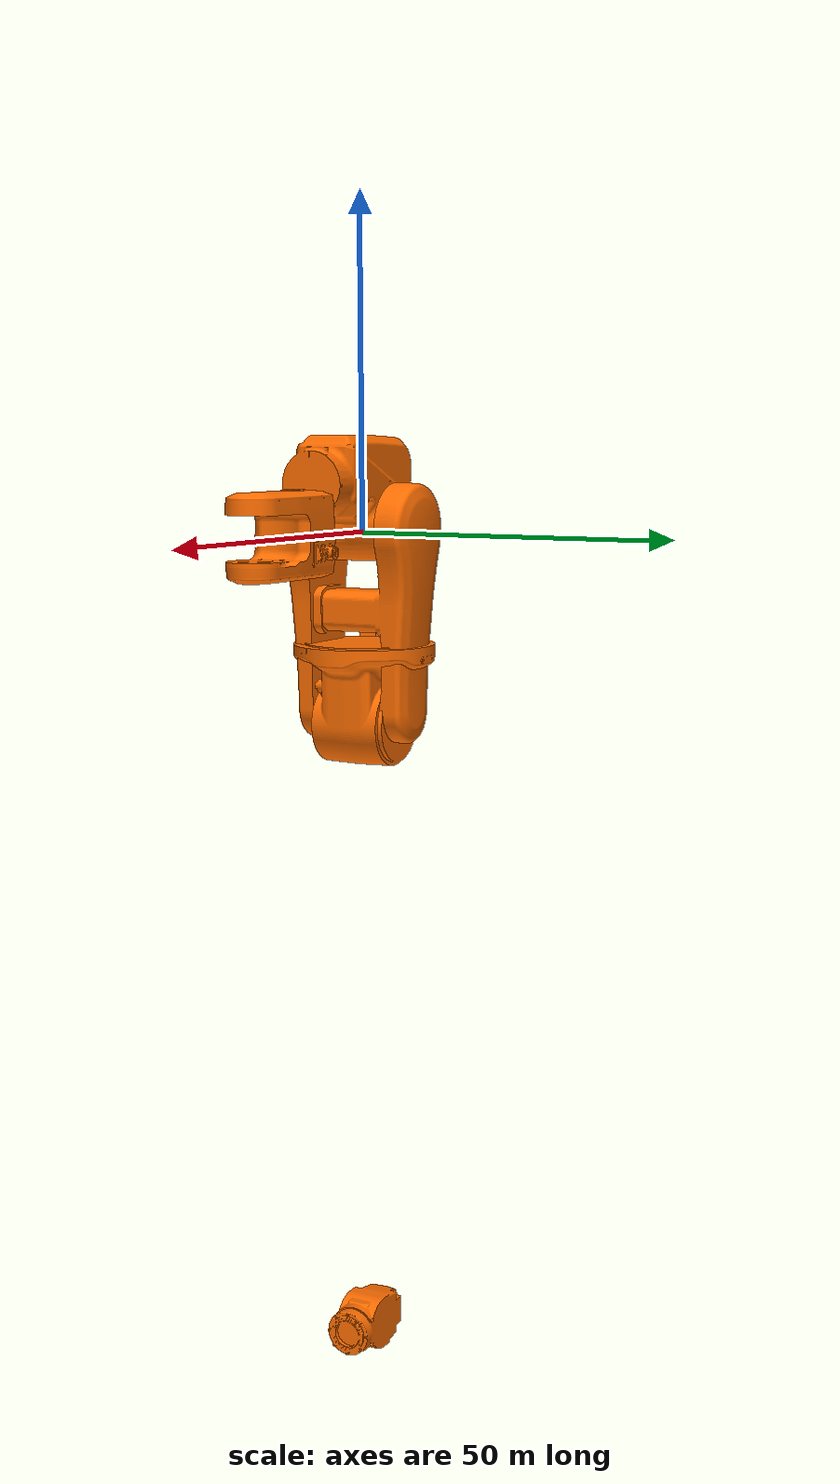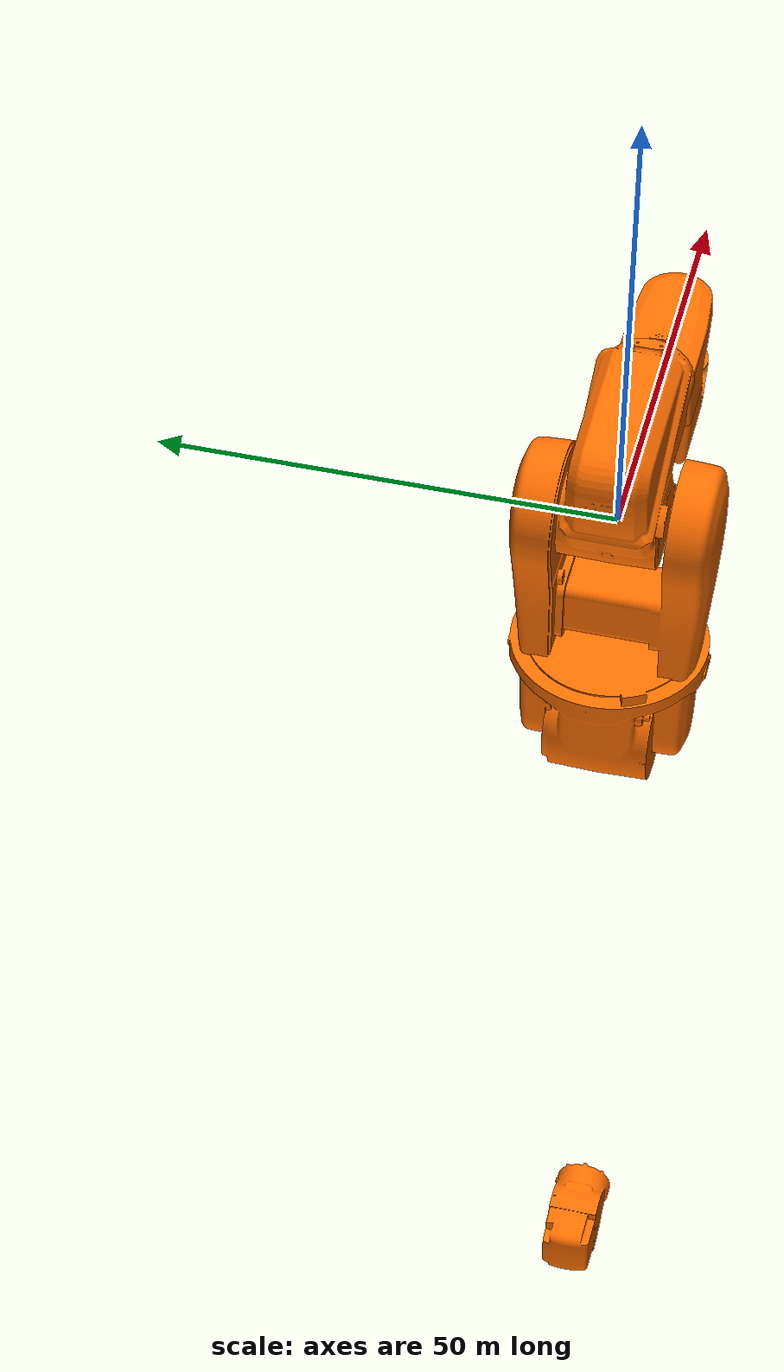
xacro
<?xml version="1.0" ?>

<robot name="irb_120_s" xmlns:xacro="http://ros.org/wiki/xacro">
	<xacro:include filename="$(find abb_common)/urdf/irb_120_macro.xacro"/>
	<xacro:irb_120 prefix=""/>
<link name="link_wp">
  <visual>
    <geometry>
      <box size="2 2 0.01"/>
    </geometry>
    <material name="black">
      <color rgba="0.1 0.1 0.1 1"/>
    </material>
    <origin xyz="0 0 0"/>
  </visual>
	<collision>
		<geometry>
			<box size="2 2 0.01"/>
		</geometry>
    <origin xyz="0 0 0"/>
	</collision>
</link>

<joint name="joint_wp2b" type="fixed">
  <parent link="link_wp"/>
  <child link="base_link"/>
  <origin xyz="0 0 0"/>
</joint>

<link name="link_scanner">
  <visual>
    <geometry>
      <box size="0.1 0.4 0.1"/>
    </geometry>
    <material name="silver">
      <color rgba="0.7 0.7 0.7 1"/>
    </material>
    <origin xyz="0 0 0"/>
  </visual>
	<collision>
		<geometry>
			<box size="0.1 0.4 0.1"/>
		</geometry>
    <origin xyz="0 0 0"/>
	</collision>
</link>

<link name="link_laserplate">
  <visual>
    <geometry>
      <box size="0.5 0.001 0.6"/>
    </geometry>
    <material name="red">
      <color rgba="0.8 0.1 0.1 0.3"/>
    </material>
    <origin xyz="0.6 0 0"/>
  </visual>
 	<collision>
		<geometry>
      <box size="0.0001 0.0001 0.0001"/>
		</geometry>
    <origin xyz="0 0 0"/>
	</collision>
</link>

<joint name="joint_s2t" type="fixed">
  <parent link="tool0"/>
  <child link="link_scanner"/>
  <origin xyz="0.05 0 0"/>
</joint>

<joint name="joint_l2s" type="fixed">
  <parent link="link_scanner"/>
  <child link="link_laserplate"/>
  <origin xyz="0 0 0"/>
</joint>
</robot>

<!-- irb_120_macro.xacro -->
<robot xmlns:xacro="http://ros.org/wiki/xacro">
	<xacro:macro name="irb_120" params="prefix">
		<!-- link list -->
		<link name="${prefix}base_link">
			<visual>
     			<origin
        		xyz="0 0 0"
       			rpy="0 0 0" />
      			<geometry>
        			<mesh
          			filename="package://abb_common/meshes/irb_120/visual/base_link.stl" />
      			</geometry>
      			<material
        			name="abb_orange">
        			<color
          			rgba="1 0.43 0 1" />
      			</material>
    		</visual>
 			<collision>
				<geometry>
					<mesh filename="package://abb_common/meshes/irb_120/collision/base_link.stl" />
				</geometry>
				<material name="yellow">
					<color rgba="0 1 1 1"/>
				</material>
			</collision>

		</link>
		<link name="${prefix}link_1">
			<visual>
      			<origin
        			xyz="0 0 0"
        			rpy="0 0 0" />
      			<geometry>
        			<mesh
          			filename="package://abb_common/meshes/irb_120/visual/link_1.stl" />
      			</geometry>
      			<material name="abb_orange"/>
    		</visual>
			<collision>
      			<origin
        			xyz="0 0 0"
        			rpy="0 0 0" />
				<geometry>
					<mesh filename="package://abb_common/meshes/irb_120/collision/link_1.stl" />
				</geometry>
				<material name="yellow"/>
			</collision>

		</link>
		<link name="${prefix}link_2">
		    <visual>
      			<origin
        			xyz="0 0 0"
        			rpy="0 0 0" />
      			<geometry>
        			<mesh
          			filename="package://abb_common/meshes/irb_120/visual/link_2.stl" />
      			</geometry>
      			<material name="abb_orange"/>
    		</visual>
			<collision>
      			<origin
        			xyz="0 0 0"
        			rpy="0 0 0" />
				<geometry>
					<mesh filename="package://abb_common/meshes/irb_120/collision/link_2.stl" />
				</geometry>
				<material name="yellow"/>
			</collision>

		</link>
		<link name="${prefix}link_3">
			<visual>
				<origin
					xyz="0 0 0"
					rpy="0 0 0" />
			  	<geometry>
					<mesh
				  	filename="package://abb_common/meshes/irb_120/visual/link_3.stl" />
			  	</geometry>
			  	<material name="abb_orange"/>
			</visual>
			<collision>
      			<origin
        			xyz="0 0 0"
        			rpy="0 0 0" />
				<geometry>
					<mesh filename="package://abb_common/meshes/irb_120/collision/link_3.stl" />
				</geometry>
				<material name="yellow"/>
			</collision>

		</link>
		<link name="${prefix}link_4">
			<visual>
				  <origin
					xyz="0 0 0"
					rpy="0 0 0" />
				  <geometry>
					<mesh
					  filename="package://abb_common/meshes/irb_120/visual/link_4.stl" />
				  </geometry>
				  <material name="abb_orange"/>
			</visual>
			<collision>
      			<origin
        			xyz="0 0 0"
        			rpy="0 0 0" />
				<geometry>
					<mesh filename="package://abb_common/meshes/irb_120/collision/link_4.stl" />
				</geometry>
				<material name="yellow"/>
			</collision>

		</link>
		<link name="${prefix}link_5">
			<visual>
				<origin
					xyz="0 0 0"
					rpy="0 0 0" />
				<geometry>
					<mesh
					  filename="package://abb_common/meshes/irb_120/visual/link_5.stl" />
				</geometry>
				<material name="abb_orange"/>
			</visual>
			<collision>
      			<origin
        			xyz="0 0 0"
        			rpy="0 0 0" />
				<geometry>
					<mesh filename="package://abb_common/meshes/irb_120/collision/link_5.stl" />
				</geometry>
				<material name="yellow"/>
			</collision>

		</link>
		<link name="${prefix}link_6">
			<visual>
				<origin
					xyz="0 0 0"
					rpy="0 0 0" />
				<geometry>
					<mesh
					  filename="package://abb_common/meshes/irb_120/visual/link_6.stl" />
				</geometry>
				<material name="abb_orange"/>
			</visual>
			<collision>
      			<origin
        			xyz="0 0 0"
        			rpy="0 0 0" />
				<geometry>
					<mesh filename="package://abb_common/meshes/irb_120/collision/link_6.stl" />
				</geometry>
				<material name="yellow"/>
			</collision>

		</link>
		<link name="${prefix}tool0"/>
		<!-- end of link list -->

		<!-- joint list -->
		<joint name="${prefix}joint_1" type="revolute">
			<origin
			  xyz="0 0 0"
			  rpy="0 0 0" />
			<parent
			  link="base_link" />
			<child
			  link="link_1" />
			<axis
			  xyz="0 0 1" />
			<limit
			  lower="-3.1416"
			  upper="3.1416"
			  effort="0"
			  velocity="2.618" />
			<calibration
			  rising="0"
			  falling="0" />
			<dynamics
			  damping="0"
			  friction="0" />
		</joint>
		<joint name="${prefix}joint_2" type="revolute">
			<origin
			  xyz="0 0 0.29"
			  rpy="0 0 0" />
			<parent
			  link="link_1" />
			<child
			  link="link_2" />
			<axis
			  xyz="0 1 0" />
			<limit
			  lower="-1.7453"
			  upper="1.9199"
			  effort="0"
			  velocity="2.618" />
			<calibration
			  rising="0"
			  falling="0" />
			<dynamics
			  damping="0"
			  friction="0" />
  		</joint>
		<joint name="${prefix}joint_3" type="revolute">
			<origin
			  xyz="0 0 0.27"
			  rpy="0 0 0" />
			<parent
			  link="link_2" />
			<child
			  link="link_3" />
			<axis
			  xyz="0 1 0" />
			<limit
			  lower="-1.0472"
			  upper="1.1345"
			  effort="0"
			  velocity="2.618" />
			<calibration
			  rising="0"
			  falling="0" />
			<dynamics
			  damping="0"
			  friction="0" />
		</joint>
		<joint name="${prefix}joint_4" type="revolute">
			<origin
			  xyz="0 0 0.07"
			  rpy="0 0 0" />
			<parent
			  link="link_3" />
			<child
			  link="link_4" />
			<axis
			  xyz="1 0 0" />
			<limit
			  lower="-3.49"
			  upper="3.49"
			  effort="0"
			  velocity="6.2832" />
			<calibration
			  rising="0"
			  falling="0" />
			<dynamics
			  damping="0"
			  friction="0" />
		</joint>
		<joint name="${prefix}joint_5" type="revolute">
			<origin
			  xyz="0.302 0 0"
			  rpy="0 0 0" />
			<parent
			  link="link_4" />
			<child
			  link="link_5" />
			<axis
			  xyz="0 1 0" />
			<limit
			  lower="-2.0944"
			  upper="2.0944"
			  effort="0"
			  velocity="6.2832" />
			<calibration
			  rising="0"
			  falling="0" />
			<dynamics
			  damping="0"
			  friction="0" />
		</joint>
		<joint name="${prefix}joint_6" type="revolute">
			<origin
			  xyz="0.072 0 0"
			  rpy="0 0 0" />
			<parent
			  link="link_5" />
			<child
			  link="link_6" />
			<axis
			  xyz="1 0 0" />
			<limit
			  lower="-6.9813"
			  upper="6.9813"
			  effort="0"
			  velocity="7.854" />
			<calibration
			  rising="0"
			  falling="0" />
			<dynamics
			  damping="0"
			  friction="0" />
		</joint>
		<joint name="${prefix}joint_6-tool0" type="fixed">
			<parent link="link_6"/>
			<child link="tool0"/>
			<origin xyz="0 0 0" rpy="0 0 0"/>
		</joint>
		<!-- end of joint list -->
	</xacro:macro>
</robot>
